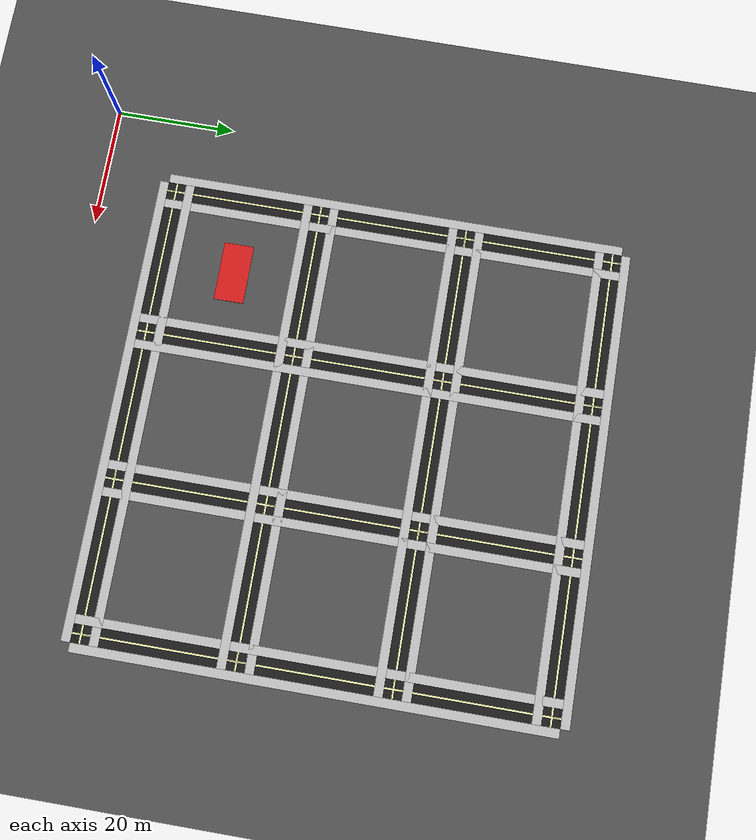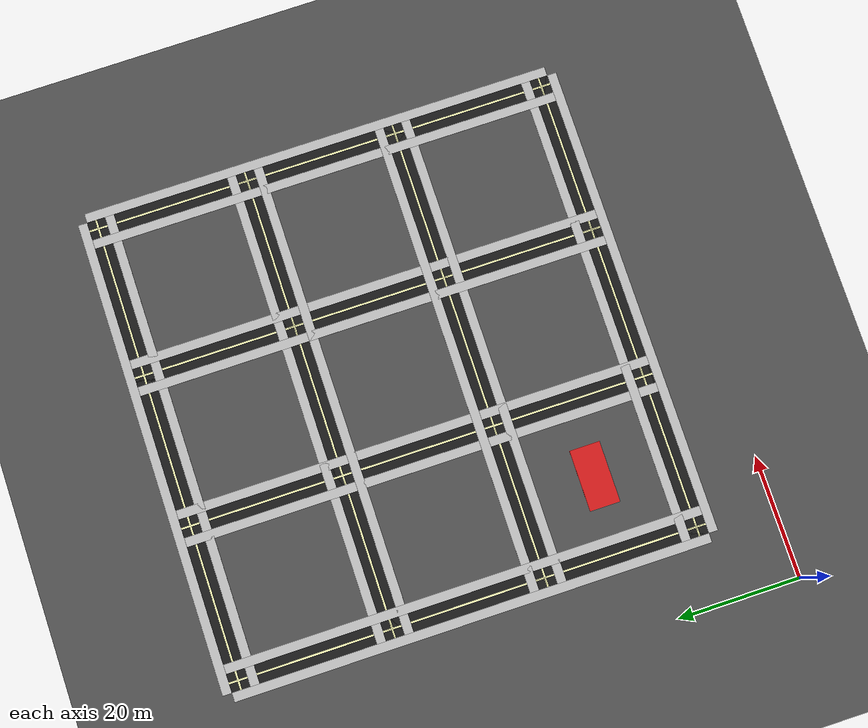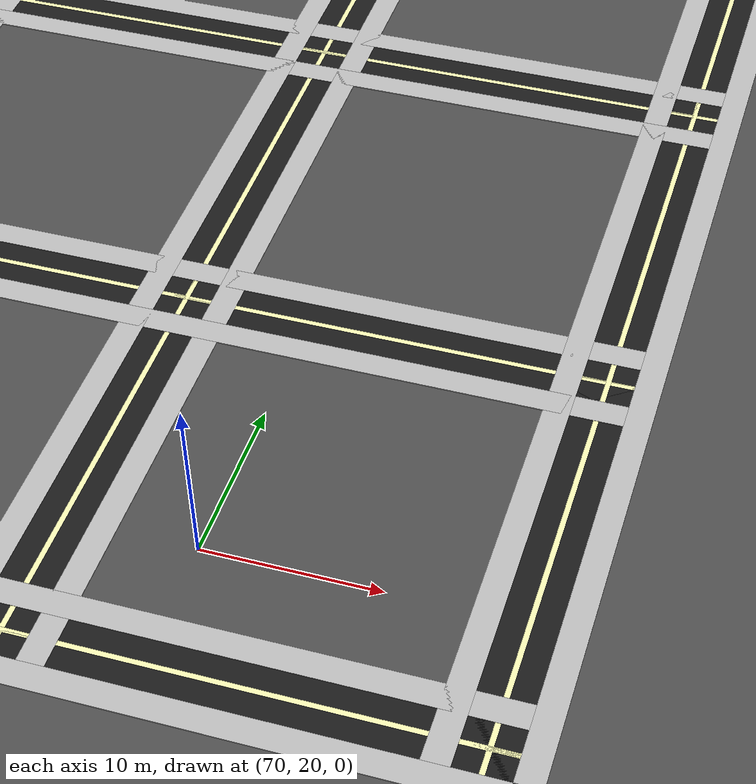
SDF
<sdf version="1.9">
 <world name="realistic_sar">
  <physics type="ode">
   <max_step_size>0.004</max_step_size>
   <real_time_factor>1.0</real_time_factor>
   <real_time_update_rate>250</real_time_update_rate>
  </physics>
  <gravity>0 0 -9.8</gravity>
  <atmosphere type="adiabatic"/>
  <magnetic_field>6e-06 2.3e-05 -4.2e-05</magnetic_field>
  <spherical_coordinates>
   <surface_model>EARTH_WGS84</surface_model>
   <world_frame_orientation>ENU</world_frame_orientation>
   <latitude_deg>47.397971057728974</latitude_deg>
   <longitude_deg>8.546163739800146</longitude_deg>
   <elevation>0</elevation>
  </spherical_coordinates>
  <scene>
   <ambient>0.65 0.65 0.65 1</ambient>
   <background>0.72 0.84 0.97 1</background>
   <grid>false</grid>
   <origin_visual>false</origin_visual>
  </scene>
  <light name="sun" type="directional">
   <pose>0 0 200 0 0 0</pose>
   <diffuse>1 1 1 1</diffuse>
   <specular>0.2 0.2 0.2 1</specular>
   <direction>-0.4 0.2 -1</direction>
  </light>
  <model name="ground_plane">
   <static>true</static>
   <link name="link">
    <collision name="collision">
     <geometry><plane><normal>0 0 1</normal><size>1000 1000</size></plane></geometry>
    </collision>
    <visual name="visual">
     <geometry><plane><normal>0 0 1</normal><size>1000 1000</size></plane></geometry>
     <material><ambient>0.3 0.3 0.3 1</ambient><diffuse>0.3 0.3 0.3 1</diffuse></material>
    </visual>
   </link>
  </model>
  <model name="hroad_0">
   <static>true</static>
   <pose>50.00 12.50 0.010 0 0 0</pose>
   <link name="link">
    <visual name="visual">
     <geometry><box><size>78.000 3.000 0.020</size></box></geometry>
     <material><ambient>0.10 0.10 0.10 1</ambient><diffuse>0.10 0.10 0.10 1</diffuse></material>
    </visual>
   </link>
  </model>
  <model name="hside_top_0">
   <static>true</static>
   <pose>50.00 14.75 0.030 0 0 0</pose>
   <link name="link">
    <visual name="visual">
     <geometry><box><size>78.000 1.500 0.060</size></box></geometry>
     <material><ambient>0.72 0.72 0.72 1</ambient><diffuse>0.72 0.72 0.72 1</diffuse></material>
    </visual>
   </link>
  </model>
  <model name="hside_bottom_0">
   <static>true</static>
   <pose>50.00 10.25 0.030 0 0 0</pose>
   <link name="link">
    <visual name="visual">
     <geometry><box><size>78.000 1.500 0.060</size></box></geometry>
     <material><ambient>0.72 0.72 0.72 1</ambient><diffuse>0.72 0.72 0.72 1</diffuse></material>
    </visual>
   </link>
  </model>
  <model name="hline_0">
   <static>true</static>
   <pose>50.00 12.50 0.041 0 0 0</pose>
   <link name="link">
    <visual name="visual">
     <geometry><box><size>78.000 0.300 0.005</size></box></geometry>
     <material><ambient>0.95 0.95 0.70 1</ambient><diffuse>0.95 0.95 0.70 1</diffuse></material>
    </visual>
   </link>
  </model>
  <model name="hroad_1">
   <static>true</static>
   <pose>50.00 37.50 0.010 0 0 0</pose>
   <link name="link">
    <visual name="visual">
     <geometry><box><size>78.000 3.000 0.020</size></box></geometry>
     <material><ambient>0.10 0.10 0.10 1</ambient><diffuse>0.10 0.10 0.10 1</diffuse></material>
    </visual>
   </link>
  </model>
  <model name="hside_top_1">
   <static>true</static>
   <pose>50.00 39.75 0.030 0 0 0</pose>
   <link name="link">
    <visual name="visual">
     <geometry><box><size>78.000 1.500 0.060</size></box></geometry>
     <material><ambient>0.72 0.72 0.72 1</ambient><diffuse>0.72 0.72 0.72 1</diffuse></material>
    </visual>
   </link>
  </model>
  <model name="hside_bottom_1">
   <static>true</static>
   <pose>50.00 35.25 0.030 0 0 0</pose>
   <link name="link">
    <visual name="visual">
     <geometry><box><size>78.000 1.500 0.060</size></box></geometry>
     <material><ambient>0.72 0.72 0.72 1</ambient><diffuse>0.72 0.72 0.72 1</diffuse></material>
    </visual>
   </link>
  </model>
  <model name="hline_1">
   <static>true</static>
   <pose>50.00 37.50 0.041 0 0 0</pose>
   <link name="link">
    <visual name="visual">
     <geometry><box><size>78.000 0.300 0.005</size></box></geometry>
     <material><ambient>0.95 0.95 0.70 1</ambient><diffuse>0.95 0.95 0.70 1</diffuse></material>
    </visual>
   </link>
  </model>
  <model name="hroad_2">
   <static>true</static>
   <pose>50.00 62.50 0.010 0 0 0</pose>
   <link name="link">
    <visual name="visual">
     <geometry><box><size>78.000 3.000 0.020</size></box></geometry>
     <material><ambient>0.10 0.10 0.10 1</ambient><diffuse>0.10 0.10 0.10 1</diffuse></material>
    </visual>
   </link>
  </model>
  <model name="hside_top_2">
   <static>true</static>
   <pose>50.00 64.75 0.030 0 0 0</pose>
   <link name="link">
    <visual name="visual">
     <geometry><box><size>78.000 1.500 0.060</size></box></geometry>
     <material><ambient>0.72 0.72 0.72 1</ambient><diffuse>0.72 0.72 0.72 1</diffuse></material>
    </visual>
   </link>
  </model>
  <model name="hside_bottom_2">
   <static>true</static>
   <pose>50.00 60.25 0.030 0 0 0</pose>
   <link name="link">
    <visual name="visual">
     <geometry><box><size>78.000 1.500 0.060</size></box></geometry>
     <material><ambient>0.72 0.72 0.72 1</ambient><diffuse>0.72 0.72 0.72 1</diffuse></material>
    </visual>
   </link>
  </model>
  <model name="hline_2">
   <static>true</static>
   <pose>50.00 62.50 0.041 0 0 0</pose>
   <link name="link">
    <visual name="visual">
     <geometry><box><size>78.000 0.300 0.005</size></box></geometry>
     <material><ambient>0.95 0.95 0.70 1</ambient><diffuse>0.95 0.95 0.70 1</diffuse></material>
    </visual>
   </link>
  </model>
  <model name="hroad_3">
   <static>true</static>
   <pose>50.00 87.50 0.010 0 0 0</pose>
   <link name="link">
    <visual name="visual">
     <geometry><box><size>78.000 3.000 0.020</size></box></geometry>
     <material><ambient>0.10 0.10 0.10 1</ambient><diffuse>0.10 0.10 0.10 1</diffuse></material>
    </visual>
   </link>
  </model>
  <model name="hside_top_3">
   <static>true</static>
   <pose>50.00 89.75 0.030 0 0 0</pose>
   <link name="link">
    <visual name="visual">
     <geometry><box><size>78.000 1.500 0.060</size></box></geometry>
     <material><ambient>0.72 0.72 0.72 1</ambient><diffuse>0.72 0.72 0.72 1</diffuse></material>
    </visual>
   </link>
  </model>
  <model name="hside_bottom_3">
   <static>true</static>
   <pose>50.00 85.25 0.030 0 0 0</pose>
   <link name="link">
    <visual name="visual">
     <geometry><box><size>78.000 1.500 0.060</size></box></geometry>
     <material><ambient>0.72 0.72 0.72 1</ambient><diffuse>0.72 0.72 0.72 1</diffuse></material>
    </visual>
   </link>
  </model>
  <model name="hline_3">
   <static>true</static>
   <pose>50.00 87.50 0.041 0 0 0</pose>
   <link name="link">
    <visual name="visual">
     <geometry><box><size>78.000 0.300 0.005</size></box></geometry>
     <material><ambient>0.95 0.95 0.70 1</ambient><diffuse>0.95 0.95 0.70 1</diffuse></material>
    </visual>
   </link>
  </model>
  <model name="vroad_0">
   <static>true</static>
   <pose>12.50 50.00 0.010 0 0 0</pose>
   <link name="link">
    <visual name="visual">
     <geometry><box><size>3.000 78.000 0.020</size></box></geometry>
     <material><ambient>0.10 0.10 0.10 1</ambient><diffuse>0.10 0.10 0.10 1</diffuse></material>
    </visual>
   </link>
  </model>
  <model name="vside_left_0">
   <static>true</static>
   <pose>10.25 50.00 0.030 0 0 0</pose>
   <link name="link">
    <visual name="visual">
     <geometry><box><size>1.500 78.000 0.060</size></box></geometry>
     <material><ambient>0.72 0.72 0.72 1</ambient><diffuse>0.72 0.72 0.72 1</diffuse></material>
    </visual>
   </link>
  </model>
  <model name="vside_right_0">
   <static>true</static>
   <pose>14.75 50.00 0.030 0 0 0</pose>
   <link name="link">
    <visual name="visual">
     <geometry><box><size>1.500 78.000 0.060</size></box></geometry>
     <material><ambient>0.72 0.72 0.72 1</ambient><diffuse>0.72 0.72 0.72 1</diffuse></material>
    </visual>
   </link>
  </model>
  <model name="vline_0">
   <static>true</static>
   <pose>12.50 50.00 0.041 0 0 0</pose>
   <link name="link">
    <visual name="visual">
     <geometry><box><size>0.300 78.000 0.005</size></box></geometry>
     <material><ambient>0.95 0.95 0.70 1</ambient><diffuse>0.95 0.95 0.70 1</diffuse></material>
    </visual>
   </link>
  </model>
  <model name="vroad_1">
   <static>true</static>
   <pose>37.50 50.00 0.010 0 0 0</pose>
   <link name="link">
    <visual name="visual">
     <geometry><box><size>3.000 78.000 0.020</size></box></geometry>
     <material><ambient>0.10 0.10 0.10 1</ambient><diffuse>0.10 0.10 0.10 1</diffuse></material>
    </visual>
   </link>
  </model>
  <model name="vside_left_1">
   <static>true</static>
   <pose>35.25 50.00 0.030 0 0 0</pose>
   <link name="link">
    <visual name="visual">
     <geometry><box><size>1.500 78.000 0.060</size></box></geometry>
     <material><ambient>0.72 0.72 0.72 1</ambient><diffuse>0.72 0.72 0.72 1</diffuse></material>
    </visual>
   </link>
  </model>
  <model name="vside_right_1">
   <static>true</static>
   <pose>39.75 50.00 0.030 0 0 0</pose>
   <link name="link">
    <visual name="visual">
     <geometry><box><size>1.500 78.000 0.060</size></box></geometry>
     <material><ambient>0.72 0.72 0.72 1</ambient><diffuse>0.72 0.72 0.72 1</diffuse></material>
    </visual>
   </link>
  </model>
  <model name="vline_1">
   <static>true</static>
   <pose>37.50 50.00 0.041 0 0 0</pose>
   <link name="link">
    <visual name="visual">
     <geometry><box><size>0.300 78.000 0.005</size></box></geometry>
     <material><ambient>0.95 0.95 0.70 1</ambient><diffuse>0.95 0.95 0.70 1</diffuse></material>
    </visual>
   </link>
  </model>
  <model name="vroad_2">
   <static>true</static>
   <pose>62.50 50.00 0.010 0 0 0</pose>
   <link name="link">
    <visual name="visual">
     <geometry><box><size>3.000 78.000 0.020</size></box></geometry>
     <material><ambient>0.10 0.10 0.10 1</ambient><diffuse>0.10 0.10 0.10 1</diffuse></material>
    </visual>
   </link>
  </model>
  <model name="vside_left_2">
   <static>true</static>
   <pose>60.25 50.00 0.030 0 0 0</pose>
   <link name="link">
    <visual name="visual">
     <geometry><box><size>1.500 78.000 0.060</size></box></geometry>
     <material><ambient>0.72 0.72 0.72 1</ambient><diffuse>0.72 0.72 0.72 1</diffuse></material>
    </visual>
   </link>
  </model>
  <model name="vside_right_2">
   <static>true</static>
   <pose>64.75 50.00 0.030 0 0 0</pose>
   <link name="link">
    <visual name="visual">
     <geometry><box><size>1.500 78.000 0.060</size></box></geometry>
     <material><ambient>0.72 0.72 0.72 1</ambient><diffuse>0.72 0.72 0.72 1</diffuse></material>
    </visual>
   </link>
  </model>
  <model name="vline_2">
   <static>true</static>
   <pose>62.50 50.00 0.041 0 0 0</pose>
   <link name="link">
    <visual name="visual">
     <geometry><box><size>0.300 78.000 0.005</size></box></geometry>
     <material><ambient>0.95 0.95 0.70 1</ambient><diffuse>0.95 0.95 0.70 1</diffuse></material>
    </visual>
   </link>
  </model>
  <model name="vroad_3">
   <static>true</static>
   <pose>87.50 50.00 0.010 0 0 0</pose>
   <link name="link">
    <visual name="visual">
     <geometry><box><size>3.000 78.000 0.020</size></box></geometry>
     <material><ambient>0.10 0.10 0.10 1</ambient><diffuse>0.10 0.10 0.10 1</diffuse></material>
    </visual>
   </link>
  </model>
  <model name="vside_left_3">
   <static>true</static>
   <pose>85.25 50.00 0.030 0 0 0</pose>
   <link name="link">
    <visual name="visual">
     <geometry><box><size>1.500 78.000 0.060</size></box></geometry>
     <material><ambient>0.72 0.72 0.72 1</ambient><diffuse>0.72 0.72 0.72 1</diffuse></material>
    </visual>
   </link>
  </model>
  <model name="vside_right_3">
   <static>true</static>
   <pose>89.75 50.00 0.030 0 0 0</pose>
   <link name="link">
    <visual name="visual">
     <geometry><box><size>1.500 78.000 0.060</size></box></geometry>
     <material><ambient>0.72 0.72 0.72 1</ambient><diffuse>0.72 0.72 0.72 1</diffuse></material>
    </visual>
   </link>
  </model>
  <model name="vline_3">
   <static>true</static>
   <pose>87.50 50.00 0.041 0 0 0</pose>
   <link name="link">
    <visual name="visual">
     <geometry><box><size>0.300 78.000 0.005</size></box></geometry>
     <material><ambient>0.95 0.95 0.70 1</ambient><diffuse>0.95 0.95 0.70 1</diffuse></material>
    </visual>
   </link>
  </model>
  <model name="intersection_0_0">
   <static>true</static>
   <pose>12.50 12.50 0.041 0 0 0</pose>
   <link name="link">
    <visual name="visual">
     <geometry><box><size>3.000 0.300 0.005</size></box></geometry>
     <material><ambient>0.95 0.95 0.70 1</ambient><diffuse>0.95 0.95 0.70 1</diffuse></material>
    </visual>
   </link>
  </model>
  <model name="intersection_cross_0_0">
   <static>true</static>
   <pose>12.50 12.50 0.041 0 0 0</pose>
   <link name="link">
    <visual name="visual">
     <geometry><box><size>0.300 3.000 0.005</size></box></geometry>
     <material><ambient>0.95 0.95 0.70 1</ambient><diffuse>0.95 0.95 0.70 1</diffuse></material>
    </visual>
   </link>
  </model>
  <model name="intersection_0_1">
   <static>true</static>
   <pose>37.50 12.50 0.041 0 0 0</pose>
   <link name="link">
    <visual name="visual">
     <geometry><box><size>3.000 0.300 0.005</size></box></geometry>
     <material><ambient>0.95 0.95 0.70 1</ambient><diffuse>0.95 0.95 0.70 1</diffuse></material>
    </visual>
   </link>
  </model>
  <model name="intersection_cross_0_1">
   <static>true</static>
   <pose>37.50 12.50 0.041 0 0 0</pose>
   <link name="link">
    <visual name="visual">
     <geometry><box><size>0.300 3.000 0.005</size></box></geometry>
     <material><ambient>0.95 0.95 0.70 1</ambient><diffuse>0.95 0.95 0.70 1</diffuse></material>
    </visual>
   </link>
  </model>
  <model name="intersection_0_2">
   <static>true</static>
   <pose>62.50 12.50 0.041 0 0 0</pose>
   <link name="link">
    <visual name="visual">
     <geometry><box><size>3.000 0.300 0.005</size></box></geometry>
     <material><ambient>0.95 0.95 0.70 1</ambient><diffuse>0.95 0.95 0.70 1</diffuse></material>
    </visual>
   </link>
  </model>
  <model name="intersection_cross_0_2">
   <static>true</static>
   <pose>62.50 12.50 0.041 0 0 0</pose>
   <link name="link">
    <visual name="visual">
     <geometry><box><size>0.300 3.000 0.005</size></box></geometry>
     <material><ambient>0.95 0.95 0.70 1</ambient><diffuse>0.95 0.95 0.70 1</diffuse></material>
    </visual>
   </link>
  </model>
  <model name="intersection_0_3">
   <static>true</static>
   <pose>87.50 12.50 0.041 0 0 0</pose>
   <link name="link">
    <visual name="visual">
     <geometry><box><size>3.000 0.300 0.005</size></box></geometry>
     <material><ambient>0.95 0.95 0.70 1</ambient><diffuse>0.95 0.95 0.70 1</diffuse></material>
    </visual>
   </link>
  </model>
  <model name="intersection_cross_0_3">
   <static>true</static>
   <pose>87.50 12.50 0.041 0 0 0</pose>
   <link name="link">
    <visual name="visual">
     <geometry><box><size>0.300 3.000 0.005</size></box></geometry>
     <material><ambient>0.95 0.95 0.70 1</ambient><diffuse>0.95 0.95 0.70 1</diffuse></material>
    </visual>
   </link>
  </model>
  <model name="intersection_1_0">
   <static>true</static>
   <pose>12.50 37.50 0.041 0 0 0</pose>
   <link name="link">
    <visual name="visual">
     <geometry><box><size>3.000 0.300 0.005</size></box></geometry>
     <material><ambient>0.95 0.95 0.70 1</ambient><diffuse>0.95 0.95 0.70 1</diffuse></material>
    </visual>
   </link>
  </model>
  <model name="intersection_cross_1_0">
   <static>true</static>
   <pose>12.50 37.50 0.041 0 0 0</pose>
   <link name="link">
    <visual name="visual">
     <geometry><box><size>0.300 3.000 0.005</size></box></geometry>
     <material><ambient>0.95 0.95 0.70 1</ambient><diffuse>0.95 0.95 0.70 1</diffuse></material>
    </visual>
   </link>
  </model>
  <model name="intersection_1_1">
   <static>true</static>
   <pose>37.50 37.50 0.041 0 0 0</pose>
   <link name="link">
    <visual name="visual">
     <geometry><box><size>3.000 0.300 0.005</size></box></geometry>
     <material><ambient>0.95 0.95 0.70 1</ambient><diffuse>0.95 0.95 0.70 1</diffuse></material>
    </visual>
   </link>
  </model>
  <model name="intersection_cross_1_1">
   <static>true</static>
   <pose>37.50 37.50 0.041 0 0 0</pose>
   <link name="link">
    <visual name="visual">
     <geometry><box><size>0.300 3.000 0.005</size></box></geometry>
     <material><ambient>0.95 0.95 0.70 1</ambient><diffuse>0.95 0.95 0.70 1</diffuse></material>
    </visual>
   </link>
  </model>
  <model name="intersection_1_2">
   <static>true</static>
   <pose>62.50 37.50 0.041 0 0 0</pose>
   <link name="link">
    <visual name="visual">
     <geometry><box><size>3.000 0.300 0.005</size></box></geometry>
     <material><ambient>0.95 0.95 0.70 1</ambient><diffuse>0.95 0.95 0.70 1</diffuse></material>
    </visual>
   </link>
  </model>
  <model name="intersection_cross_1_2">
   <static>true</static>
   <pose>62.50 37.50 0.041 0 0 0</pose>
   <link name="link">
    <visual name="visual">
     <geometry><box><size>0.300 3.000 0.005</size></box></geometry>
     <material><ambient>0.95 0.95 0.70 1</ambient><diffuse>0.95 0.95 0.70 1</diffuse></material>
    </visual>
   </link>
  </model>
  <model name="intersection_1_3">
   <static>true</static>
   <pose>87.50 37.50 0.041 0 0 0</pose>
   <link name="link">
    <visual name="visual">
     <geometry><box><size>3.000 0.300 0.005</size></box></geometry>
     <material><ambient>0.95 0.95 0.70 1</ambient><diffuse>0.95 0.95 0.70 1</diffuse></material>
    </visual>
   </link>
  </model>
  <model name="intersection_cross_1_3">
   <static>true</static>
   <pose>87.50 37.50 0.041 0 0 0</pose>
   <link name="link">
    <visual name="visual">
     <geometry><box><size>0.300 3.000 0.005</size></box></geometry>
     <material><ambient>0.95 0.95 0.70 1</ambient><diffuse>0.95 0.95 0.70 1</diffuse></material>
    </visual>
   </link>
  </model>
  <model name="intersection_2_0">
   <static>true</static>
   <pose>12.50 62.50 0.041 0 0 0</pose>
   <link name="link">
    <visual name="visual">
     <geometry><box><size>3.000 0.300 0.005</size></box></geometry>
     <material><ambient>0.95 0.95 0.70 1</ambient><diffuse>0.95 0.95 0.70 1</diffuse></material>
    </visual>
   </link>
  </model>
  <model name="intersection_cross_2_0">
   <static>true</static>
   <pose>12.50 62.50 0.041 0 0 0</pose>
   <link name="link">
    <visual name="visual">
     <geometry><box><size>0.300 3.000 0.005</size></box></geometry>
     <material><ambient>0.95 0.95 0.70 1</ambient><diffuse>0.95 0.95 0.70 1</diffuse></material>
    </visual>
   </link>
  </model>
  <model name="intersection_2_1">
   <static>true</static>
   <pose>37.50 62.50 0.041 0 0 0</pose>
   <link name="link">
    <visual name="visual">
     <geometry><box><size>3.000 0.300 0.005</size></box></geometry>
     <material><ambient>0.95 0.95 0.70 1</ambient><diffuse>0.95 0.95 0.70 1</diffuse></material>
    </visual>
   </link>
  </model>
  <model name="intersection_cross_2_1">
   <static>true</static>
   <pose>37.50 62.50 0.041 0 0 0</pose>
   <link name="link">
    <visual name="visual">
     <geometry><box><size>0.300 3.000 0.005</size></box></geometry>
     <material><ambient>0.95 0.95 0.70 1</ambient><diffuse>0.95 0.95 0.70 1</diffuse></material>
    </visual>
   </link>
  </model>
  <model name="intersection_2_2">
   <static>true</static>
   <pose>62.50 62.50 0.041 0 0 0</pose>
   <link name="link">
    <visual name="visual">
     <geometry><box><size>3.000 0.300 0.005</size></box></geometry>
     <material><ambient>0.95 0.95 0.70 1</ambient><diffuse>0.95 0.95 0.70 1</diffuse></material>
    </visual>
   </link>
  </model>
  <model name="intersection_cross_2_2">
   <static>true</static>
   <pose>62.50 62.50 0.041 0 0 0</pose>
   <link name="link">
    <visual name="visual">
     <geometry><box><size>0.300 3.000 0.005</size></box></geometry>
     <material><ambient>0.95 0.95 0.70 1</ambient><diffuse>0.95 0.95 0.70 1</diffuse></material>
    </visual>
   </link>
  </model>
  <model name="intersection_2_3">
   <static>true</static>
   <pose>87.50 62.50 0.041 0 0 0</pose>
   <link name="link">
    <visual name="visual">
     <geometry><box><size>3.000 0.300 0.005</size></box></geometry>
     <material><ambient>0.95 0.95 0.70 1</ambient><diffuse>0.95 0.95 0.70 1</diffuse></material>
    </visual>
   </link>
  </model>
  <model name="intersection_cross_2_3">
   <static>true</static>
   <pose>87.50 62.50 0.041 0 0 0</pose>
   <link name="link">
    <visual name="visual">
     <geometry><box><size>0.300 3.000 0.005</size></box></geometry>
     <material><ambient>0.95 0.95 0.70 1</ambient><diffuse>0.95 0.95 0.70 1</diffuse></material>
    </visual>
   </link>
  </model>
  <model name="intersection_3_0">
   <static>true</static>
   <pose>12.50 87.50 0.041 0 0 0</pose>
   <link name="link">
    <visual name="visual">
     <geometry><box><size>3.000 0.300 0.005</size></box></geometry>
     <material><ambient>0.95 0.95 0.70 1</ambient><diffuse>0.95 0.95 0.70 1</diffuse></material>
    </visual>
   </link>
  </model>
  <model name="intersection_cross_3_0">
   <static>true</static>
   <pose>12.50 87.50 0.041 0 0 0</pose>
   <link name="link">
    <visual name="visual">
     <geometry><box><size>0.300 3.000 0.005</size></box></geometry>
     <material><ambient>0.95 0.95 0.70 1</ambient><diffuse>0.95 0.95 0.70 1</diffuse></material>
    </visual>
   </link>
  </model>
  <model name="intersection_3_1">
   <static>true</static>
   <pose>37.50 87.50 0.041 0 0 0</pose>
   <link name="link">
    <visual name="visual">
     <geometry><box><size>3.000 0.300 0.005</size></box></geometry>
     <material><ambient>0.95 0.95 0.70 1</ambient><diffuse>0.95 0.95 0.70 1</diffuse></material>
    </visual>
   </link>
  </model>
  <model name="intersection_cross_3_1">
   <static>true</static>
   <pose>37.50 87.50 0.041 0 0 0</pose>
   <link name="link">
    <visual name="visual">
     <geometry><box><size>0.300 3.000 0.005</size></box></geometry>
     <material><ambient>0.95 0.95 0.70 1</ambient><diffuse>0.95 0.95 0.70 1</diffuse></material>
    </visual>
   </link>
  </model>
  <model name="intersection_3_2">
   <static>true</static>
   <pose>62.50 87.50 0.041 0 0 0</pose>
   <link name="link">
    <visual name="visual">
     <geometry><box><size>3.000 0.300 0.005</size></box></geometry>
     <material><ambient>0.95 0.95 0.70 1</ambient><diffuse>0.95 0.95 0.70 1</diffuse></material>
    </visual>
   </link>
  </model>
  <model name="intersection_cross_3_2">
   <static>true</static>
   <pose>62.50 87.50 0.041 0 0 0</pose>
   <link name="link">
    <visual name="visual">
     <geometry><box><size>0.300 3.000 0.005</size></box></geometry>
     <material><ambient>0.95 0.95 0.70 1</ambient><diffuse>0.95 0.95 0.70 1</diffuse></material>
    </visual>
   </link>
  </model>
  <model name="intersection_3_3">
   <static>true</static>
   <pose>87.50 87.50 0.041 0 0 0</pose>
   <link name="link">
    <visual name="visual">
     <geometry><box><size>3.000 0.300 0.005</size></box></geometry>
     <material><ambient>0.95 0.95 0.70 1</ambient><diffuse>0.95 0.95 0.70 1</diffuse></material>
    </visual>
   </link>
  </model>
  <model name="intersection_cross_3_3">
   <static>true</static>
   <pose>87.50 87.50 0.041 0 0 0</pose>
   <link name="link">
    <visual name="visual">
     <geometry><box><size>0.300 3.000 0.005</size></box></geometry>
     <material><ambient>0.95 0.95 0.70 1</ambient><diffuse>0.95 0.95 0.70 1</diffuse></material>
    </visual>
   </link>
  </model>
  <model name="landing_pad_0_0">
   <static>true</static>
   <pose>25.00 25.00 0.05 0 0 0</pose>
   <link name="link">
    <visual name="visual">
     <geometry><box><size>10 5 0.1</size></box></geometry>
     <material><ambient>0.8 0.1 0.1 1</ambient><diffuse>0.8 0.1 0.1 1</diffuse></material>
    </visual>
   </link>
  </model>
 </world>
</sdf>
